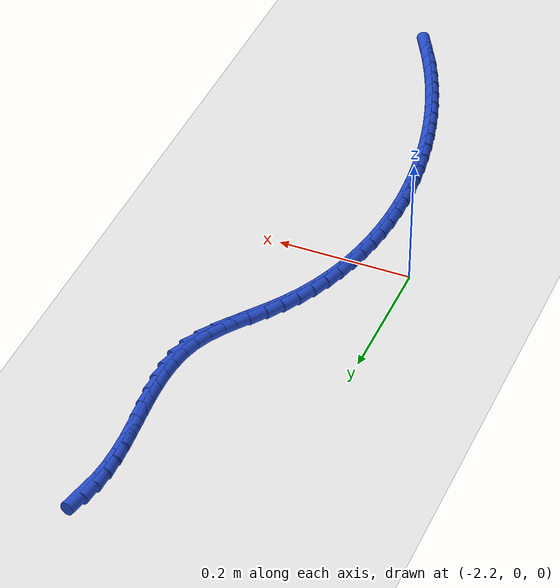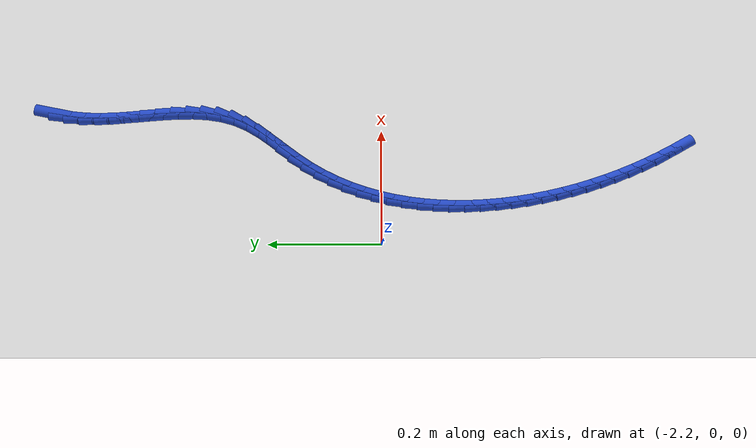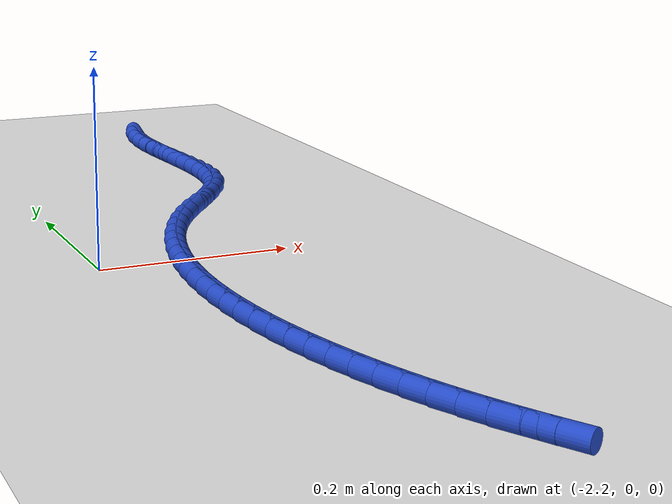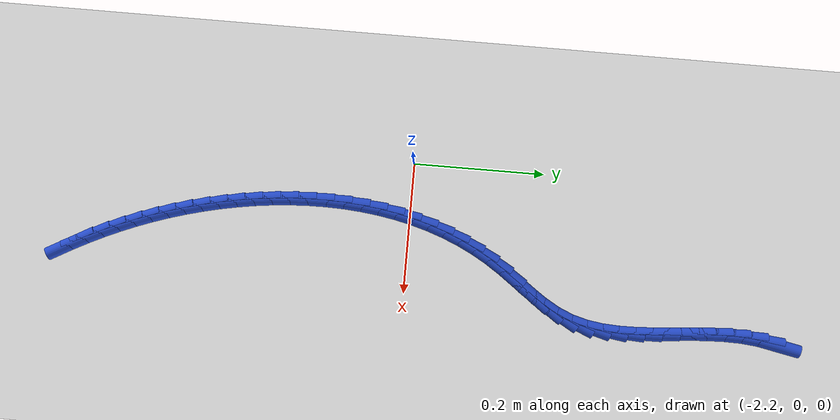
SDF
<sdf version="1.6">
 <world name="default">
  <model name="ground_plane">
   <static>1</static>
   <link name="link">
    <collision name="collision">
     <geometry><plane><normal>0 0 1</normal><size>100 100</size></plane></geometry>
     <surface><friction><ode><mu>100</mu><mu2>50</mu2></ode></friction></surface>
    </collision>
    <visual name="visual">
     <cast_shadows>0</cast_shadows>
     <geometry><plane><normal>0 0 1</normal><size>100 100</size></plane></geometry>
     <material>
      <script><uri>file://media/materials/scripts/gazebo.material</uri><name>Gazebo/WhiteGlow</name></script>
     </material>
    </visual>
   </link>
  </model>
  <model name="line">
   <link name="link_107">
    <pose>-1.9692892650598437 0.5724869319121252 0.01 0 1.57 1.3735192583928297</pose>
    <collision name="collision">
     <geometry><cylinder><radius>0.01</radius><length>0.08</length></cylinder></geometry>
    </collision>
    <visual name="visual">
     <material>
      <script><name>Gazebo/Blue</name><uri>file://media/materials/scripts/gazebo.material</uri></script>
     </material>
     <geometry><cylinder><radius>0.01</radius><length>0.08</length></cylinder></geometry>
    </visual>
   </link>
   <link name="link_108">
    <pose>-1.974353403404126 0.5471506294577564 0.01 0 1.57 1.473819494423518</pose>
    <collision name="collision">
     <geometry><cylinder><radius>0.01</radius><length>0.08</length></cylinder></geometry>
    </collision>
    <visual name="visual">
     <material>
      <script><name>Gazebo/Blue</name><uri>file://media/materials/scripts/gazebo.material</uri></script>
     </material>
     <geometry><cylinder><radius>0.01</radius><length>0.08</length></cylinder></geometry>
    </visual>
   </link>
   <link name="link_109">
    <pose>-1.9768862348520015 0.5211146537095628 0.01 0 1.57 1.5508737946856261</pose>
    <collision name="collision">
     <geometry><cylinder><radius>0.01</radius><length>0.08</length></cylinder></geometry>
    </collision>
    <visual name="visual">
     <material>
      <script><name>Gazebo/Blue</name><uri>file://media/materials/scripts/gazebo.material</uri></script>
     </material>
     <geometry><cylinder><radius>0.01</radius><length>0.08</length></cylinder></geometry>
    </visual>
   </link>
   <link name="link_110">
    <pose>-1.9774157294589445 0.49454049392088373 0.01 0 1.57 -1.5359880272005844</pose>
    <collision name="collision">
     <geometry><cylinder><radius>0.01</radius><length>0.08</length></cylinder></geometry>
    </collision>
    <visual name="visual">
     <material>
      <script><name>Gazebo/Blue</name><uri>file://media/materials/scripts/gazebo.material</uri></script>
     </material>
     <geometry><cylinder><radius>0.01</radius><length>0.08</length></cylinder></geometry>
    </visual>
   </link>
   <link name="link_111">
    <pose>-1.9764772975115974 0.46759137774064163 0.01 0 1.57 -1.5020209482997133</pose>
    <collision name="collision">
     <geometry><cylinder><radius>0.01</radius><length>0.08</length></cylinder></geometry>
    </collision>
    <visual name="visual">
     <material>
      <script><name>Gazebo/Blue</name><uri>file://media/materials/scripts/gazebo.material</uri></script>
     </material>
     <geometry><cylinder><radius>0.01</radius><length>0.08</length></cylinder></geometry>
    </visual>
   </link>
   <link name="link_112">
    <pose>-1.9746063492966035 0.44043053281775857 0.01 0 1.57 -1.4876328784370791</pose>
    <collision name="collision">
     <geometry><cylinder><radius>0.01</radius><length>0.08</length></cylinder></geometry>
    </collision>
    <visual name="visual">
     <material>
      <script><name>Gazebo/Blue</name><uri>file://media/materials/scripts/gazebo.material</uri></script>
     </material>
     <geometry><cylinder><radius>0.01</radius><length>0.08</length></cylinder></geometry>
    </visual>
   </link>
   <link name="link_113">
    <pose>-1.9723382951006043 0.4132211868011565 0.01 0 1.57 -1.492353454343386</pose>
    <collision name="collision">
     <geometry><cylinder><radius>0.01</radius><length>0.08</length></cylinder></geometry>
    </collision>
    <visual name="visual">
     <material>
      <script><name>Gazebo/Blue</name><uri>file://media/materials/scripts/gazebo.material</uri></script>
     </material>
     <geometry><cylinder><radius>0.01</radius><length>0.08</length></cylinder></geometry>
    </visual>
   </link>
   <link name="link_114">
    <pose>-1.970208545210243 0.3861265673397574 0.01 0 1.57 -1.5165536761904743</pose>
    <collision name="collision">
     <geometry><cylinder><radius>0.01</radius><length>0.08</length></cylinder></geometry>
    </collision>
    <visual name="visual">
     <material>
      <script><name>Gazebo/Blue</name><uri>file://media/materials/scripts/gazebo.material</uri></script>
     </material>
     <geometry><cylinder><radius>0.01</radius><length>0.08</length></cylinder></geometry>
    </visual>
   </link>
   <link name="link_115">
    <pose>-1.968752509912163 0.3593099020824832 0.01 0 1.57 -1.5614352393379924</pose>
    <collision name="collision">
     <geometry><cylinder><radius>0.01</radius><length>0.08</length></cylinder></geometry>
    </collision>
    <visual name="visual">
     <material>
      <script><name>Gazebo/Blue</name><uri>file://media/materials/scripts/gazebo.material</uri></script>
     </material>
     <geometry><cylinder><radius>0.01</radius><length>0.08</length></cylinder></geometry>
    </visual>
   </link>
   <link name="link_116">
    <pose>-1.9685055994930059 0.3329344186782567 0.01 0 1.57 1.5127489867783444</pose>
    <collision name="collision">
     <geometry><cylinder><radius>0.01</radius><length>0.08</length></cylinder></geometry>
    </collision>
    <visual name="visual">
     <material>
      <script><name>Gazebo/Blue</name><uri>file://media/materials/scripts/gazebo.material</uri></script>
     </material>
     <geometry><cylinder><radius>0.01</radius><length>0.08</length></cylinder></geometry>
    </visual>
   </link>
   <link name="link_117">
    <pose>-1.9700032242394143 0.30716334477599955 0.01 0 1.57 1.420848318984438</pose>
    <collision name="collision">
     <geometry><cylinder><radius>0.01</radius><length>0.08</length></cylinder></geometry>
    </collision>
    <visual name="visual">
     <material>
      <script><name>Gazebo/Blue</name><uri>file://media/materials/scripts/gazebo.material</uri></script>
     </material>
     <geometry><cylinder><radius>0.01</radius><length>0.08</length></cylinder></geometry>
    </visual>
   </link>
   <link name="link_118">
    <pose>-1.9737807944380314 0.28215990802463353 0.01 0 1.57 1.3034743764671453</pose>
    <collision name="collision">
     <geometry><cylinder><radius>0.01</radius><length>0.08</length></cylinder></geometry>
    </collision>
    <visual name="visual">
     <material>
      <script><name>Gazebo/Blue</name><uri>file://media/materials/scripts/gazebo.material</uri></script>
     </material>
     <geometry><cylinder><radius>0.01</radius><length>0.08</length></cylinder></geometry>
    </visual>
   </link>
   <link name="link_119">
    <pose>-1.9803737203754996 0.25808733607308154 0.01 0 1.57 1.1642402775282215</pose>
    <collision name="collision">
     <geometry><cylinder><radius>0.01</radius><length>0.08</length></cylinder></geometry>
    </collision>
    <visual name="visual">
     <material>
      <script><name>Gazebo/Blue</name><uri>file://media/materials/scripts/gazebo.material</uri></script>
     </material>
     <geometry><cylinder><radius>0.01</radius><length>0.08</length></cylinder></geometry>
    </visual>
   </link>
   <link name="link_120">
    <pose>-1.990273695096011 0.23509316413234438 0.01 0 1.57 1.0414393901686285</pose>
    <collision name="collision">
     <geometry><cylinder><radius>0.01</radius><length>0.08</length></cylinder></geometry>
    </collision>
    <visual name="visual">
     <material>
      <script><name>Gazebo/Blue</name><uri>file://media/materials/scripts/gazebo.material</uri></script>
     </material>
     <geometry><cylinder><radius>0.01</radius><length>0.08</length></cylinder></geometry>
    </visual>
   </link>
   <link name="link_121">
    <pose>-2.0031764382200032 0.21303921031786488 0.01 0 1.57 0.9645828095021297</pose>
    <collision name="collision">
     <geometry><cylinder><radius>0.01</radius><length>0.08</length></cylinder></geometry>
    </collision>
    <visual name="visual">
     <material>
      <script><name>Gazebo/Blue</name><uri>file://media/materials/scripts/gazebo.material</uri></script>
     </material>
     <geometry><cylinder><radius>0.01</radius><length>0.08</length></cylinder></geometry>
    </visual>
   </link>
   <link name="link_122">
    <pose>-2.0180831741930203 0.19153800157740394 0.01 0 1.57 0.9308903071487193</pose>
    <collision name="collision">
     <geometry><cylinder><radius>0.01</radius><length>0.08</length></cylinder></geometry>
    </collision>
    <visual name="visual">
     <material>
      <script><name>Gazebo/Blue</name><uri>file://media/materials/scripts/gazebo.material</uri></script>
     </material>
     <geometry><cylinder><radius>0.01</radius><length>0.08</length></cylinder></geometry>
    </visual>
   </link>
   <link name="link_123">
    <pose>-2.0339718242769895 0.170193700109673 0.01 0 1.57 0.9374216310598839</pose>
    <collision name="collision">
     <geometry><cylinder><radius>0.01</radius><length>0.08</length></cylinder></geometry>
    </collision>
    <visual name="visual">
     <material>
      <script><name>Gazebo/Blue</name><uri>file://media/materials/scripts/gazebo.material</uri></script>
     </material>
     <geometry><cylinder><radius>0.01</radius><length>0.08</length></cylinder></geometry>
    </visual>
   </link>
   <link name="link_124">
    <pose>-2.049820309733838 0.14861046811338466 0.01 0 1.57 0.9829868713969717</pose>
    <collision name="collision">
     <geometry><cylinder><radius>0.01</radius><length>0.08</length></cylinder></geometry>
    </collision>
    <visual name="visual">
     <material>
      <script><name>Gazebo/Blue</name><uri>file://media/materials/scripts/gazebo.material</uri></script>
     </material>
     <geometry><cylinder><radius>0.01</radius><length>0.08</length></cylinder></geometry>
    </visual>
   </link>
   <link name="link_125">
    <pose>-2.0646216901283077 0.1263991035363758 0.01 0 1.57 1.0495695333602644</pose>
    <collision name="collision">
     <geometry><cylinder><radius>0.01</radius><length>0.08</length></cylinder></geometry>
    </collision>
    <visual name="visual">
     <material>
      <script><name>Gazebo/Blue</name><uri>file://media/materials/scripts/gazebo.material</uri></script>
     </material>
     <geometry><cylinder><radius>0.01</radius><length>0.08</length></cylinder></geometry>
    </visual>
   </link>
   <link name="link_126">
    <pose>-2.0778407041377407 0.10337716094230943 0.01 0 1.57 1.1149995174617824</pose>
    <collision name="collision">
     <geometry><cylinder><radius>0.01</radius><length>0.08</length></cylinder></geometry>
    </collision>
    <visual name="visual">
     <material>
      <script><name>Gazebo/Blue</name><uri>file://media/materials/scripts/gazebo.material</uri></script>
     </material>
     <geometry><cylinder><radius>0.01</radius><length>0.08</length></cylinder></geometry>
    </visual>
   </link>
   <link name="link_127">
    <pose>-2.0894946876336222 0.07960442127868463 0.01 0 1.57 1.1777402097206275</pose>
    <collision name="collision">
     <geometry><cylinder><radius>0.01</radius><length>0.08</length></cylinder></geometry>
    </collision>
    <visual name="visual">
     <material>
      <script><name>Gazebo/Blue</name><uri>file://media/materials/scripts/gazebo.material</uri></script>
     </material>
     <geometry><cylinder><radius>0.01</radius><length>0.08</length></cylinder></geometry>
    </visual>
   </link>
   <link name="link_128">
    <pose>-2.0996324256906043 0.05515445098962869 0.01 0 1.57 1.2376280993991808</pose>
    <collision name="collision">
     <geometry><cylinder><radius>0.01</radius><length>0.08</length></cylinder></geometry>
    </collision>
    <visual name="visual">
     <material>
      <script><name>Gazebo/Blue</name><uri>file://media/materials/scripts/gazebo.material</uri></script>
     </material>
     <geometry><cylinder><radius>0.01</radius><length>0.08</length></cylinder></geometry>
    </visual>
   </link>
   <link name="link_129">
    <pose>-2.1083027033833375 0.03010081651926928 0.01 0 1.57 1.2945951666907884</pose>
    <collision name="collision">
     <geometry><cylinder><radius>0.01</radius><length>0.08</length></cylinder></geometry>
    </collision>
    <visual name="visual">
     <material>
      <script><name>Gazebo/Blue</name><uri>file://media/materials/scripts/gazebo.material</uri></script>
     </material>
     <geometry><cylinder><radius>0.01</radius><length>0.08</length></cylinder></geometry>
    </visual>
   </link>
   <link name="link_130">
    <pose>-2.1155543057864725 0.004517084311734022 0.01 0 1.57 1.3486540381465553</pose>
    <collision name="collision">
     <geometry><cylinder><radius>0.01</radius><length>0.08</length></cylinder></geometry>
    </collision>
    <visual name="visual">
     <material>
      <script><name>Gazebo/Blue</name><uri>file://media/materials/scripts/gazebo.material</uri></script>
     </material>
     <geometry><cylinder><radius>0.01</radius><length>0.08</length></cylinder></geometry>
    </visual>
   </link>
   <link name="link_131">
    <pose>-2.12143601797466 -0.02152317918884943 0.01 0 1.57 1.3998818391510859</pose>
    <collision name="collision">
     <geometry><cylinder><radius>0.01</radius><length>0.08</length></cylinder></geometry>
    </collision>
    <visual name="visual">
     <material>
      <script><name>Gazebo/Blue</name><uri>file://media/materials/scripts/gazebo.material</uri></script>
     </material>
     <geometry><cylinder><radius>0.01</radius><length>0.08</length></cylinder></geometry>
    </visual>
   </link>
   <link name="link_132">
    <pose>-2.1259966250225513 -0.04794640753835341 0.01 0 1.57 1.448404637432862</pose>
    <collision name="collision">
     <geometry><cylinder><radius>0.01</radius><length>0.08</length></cylinder></geometry>
    </collision>
    <visual name="visual">
     <material>
      <script><name>Gazebo/Blue</name><uri>file://media/materials/scripts/gazebo.material</uri></script>
     </material>
     <geometry><cylinder><radius>0.01</radius><length>0.08</length></cylinder></geometry>
    </visual>
   </link>
   <link name="link_133">
    <pose>-2.1292849120047985 -0.07467903429265108 0.01 0 1.57 1.4943836617533655</pose>
    <collision name="collision">
     <geometry><cylinder><radius>0.01</radius><length>0.08</length></cylinder></geometry>
    </collision>
    <visual name="visual">
     <material>
      <script><name>Gazebo/Blue</name><uri>file://media/materials/scripts/gazebo.material</uri></script>
     </material>
     <geometry><cylinder><radius>0.01</radius><length>0.08</length></cylinder></geometry>
    </visual>
   </link>
   <link name="link_134">
    <pose>-2.13134966399605 -0.10164749300761317 0.01 0 1.57 1.5380038725770064</pose>
    <collision name="collision">
     <geometry><cylinder><radius>0.01</radius><length>0.08</length></cylinder></geometry>
    </collision>
    <visual name="visual">
     <material>
      <script><name>Gazebo/Blue</name><uri>file://media/materials/scripts/gazebo.material</uri></script>
     </material>
     <geometry><cylinder><radius>0.01</radius><length>0.08</length></cylinder></geometry>
    </visual>
   </link>
   <link name="link_135">
    <pose>-2.1322396660709586 -0.12877821723911287 0.01 0 1.57 -1.562127632622119</pose>
    <collision name="collision">
     <geometry><cylinder><radius>0.01</radius><length>0.08</length></cylinder></geometry>
    </collision>
    <visual name="visual">
     <material>
      <script><name>Gazebo/Blue</name><uri>file://media/materials/scripts/gazebo.material</uri></script>
     </material>
     <geometry><cylinder><radius>0.01</radius><length>0.08</length></cylinder></geometry>
    </visual>
   </link>
   <link name="link_136">
    <pose>-2.132003703304175 -0.1559976405430225 0.01 0 1.57 -1.5226175952604049</pose>
    <collision name="collision">
     <geometry><cylinder><radius>0.01</radius><length>0.08</length></cylinder></geometry>
    </collision>
    <visual name="visual">
     <material>
      <script><name>Gazebo/Blue</name><uri>file://media/materials/scripts/gazebo.material</uri></script>
     </material>
     <geometry><cylinder><radius>0.01</radius><length>0.08</length></cylinder></geometry>
    </visual>
   </link>
   <link name="link_137">
    <pose>-2.1306905607703492 -0.1832321964752144 0.01 0 1.57 -1.484847032411939</pose>
    <collision name="collision">
     <geometry><cylinder><radius>0.01</radius><length>0.08</length></cylinder></geometry>
    </collision>
    <visual name="visual">
     <material>
      <script><name>Gazebo/Blue</name><uri>file://media/materials/scripts/gazebo.material</uri></script>
     </material>
     <geometry><cylinder><radius>0.01</radius><length>0.08</length></cylinder></geometry>
    </visual>
   </link>
   <link name="link_138">
    <pose>-2.1283490235441334 -0.21040831859156095 0.01 0 1.57 -1.4486033819289177</pose>
    <collision name="collision">
     <geometry><cylinder><radius>0.01</radius><length>0.08</length></cylinder></geometry>
    </collision>
    <visual name="visual">
     <material>
      <script><name>Gazebo/Blue</name><uri>file://media/materials/scripts/gazebo.material</uri></script>
     </material>
     <geometry><cylinder><radius>0.01</radius><length>0.08</length></cylinder></geometry>
    </visual>
   </link>
   <link name="link_139">
    <pose>-2.1250278767001776 -0.23745244044793445 0.01 0 1.57 -1.4136744634495668</pose>
    <collision name="collision">
     <geometry><cylinder><radius>0.01</radius><length>0.08</length></cylinder></geometry>
    </collision>
    <visual name="visual">
     <material>
      <script><name>Gazebo/Blue</name><uri>file://media/materials/scripts/gazebo.material</uri></script>
     </material>
     <geometry><cylinder><radius>0.01</radius><length>0.08</length></cylinder></geometry>
    </visual>
   </link>
   <link name="link_140">
    <pose>-2.120775905313133 -0.2642909956002081 0.01 0 1.57 -1.3798485895681412</pose>
    <collision name="collision">
     <geometry><cylinder><radius>0.01</radius><length>0.08</length></cylinder></geometry>
    </collision>
    <visual name="visual">
     <material>
      <script><name>Gazebo/Blue</name><uri>file://media/materials/scripts/gazebo.material</uri></script>
     </material>
     <geometry><cylinder><radius>0.01</radius><length>0.08</length></cylinder></geometry>
    </visual>
   </link>
   <link name="link_141">
    <pose>-2.1156418944576503 -0.2908504176042526 0.01 0 1.57 -1.3469136738407417</pose>
    <collision name="collision">
     <geometry><cylinder><radius>0.01</radius><length>0.08</length></cylinder></geometry>
    </collision>
    <visual name="visual">
     <material>
      <script><name>Gazebo/Blue</name><uri>file://media/materials/scripts/gazebo.material</uri></script>
     </material>
     <geometry><cylinder><radius>0.01</radius><length>0.08</length></cylinder></geometry>
    </visual>
   </link>
   <link name="link_142">
    <pose>-2.1096746292083814 -0.31705714001594115 0.01 0 1.57 -1.3146046534071527</pose>
    <collision name="collision">
     <geometry><cylinder><radius>0.01</radius><length>0.08</length></cylinder></geometry>
    </collision>
    <visual name="visual">
     <material>
      <script><name>Gazebo/Blue</name><uri>file://media/materials/scripts/gazebo.material</uri></script>
     </material>
     <geometry><cylinder><radius>0.01</radius><length>0.08</length></cylinder></geometry>
    </visual>
   </link>
   <link name="link_143">
    <pose>-2.1029193424077457 -0.34284581380880735 0.01 0 1.57 -1.2824415216156866</pose>
    <collision name="collision">
     <geometry><cylinder><radius>0.01</radius><length>0.08</length></cylinder></geometry>
    </collision>
    <visual name="visual">
     <material>
      <script><name>Gazebo/Blue</name><uri>file://media/materials/scripts/gazebo.material</uri></script>
     </material>
     <geometry><cylinder><radius>0.01</radius><length>0.08</length></cylinder></geometry>
    </visual>
   </link>
   <link name="link_144">
    <pose>-2.095395694335413 -0.3682102472454143 0.01 0 1.57 -1.2503596058764912</pose>
    <collision name="collision">
     <geometry><cylinder><radius>0.01</radius><length>0.08</length></cylinder></geometry>
    </collision>
    <visual name="visual">
     <material>
      <script><name>Gazebo/Blue</name><uri>file://media/materials/scripts/gazebo.material</uri></script>
     </material>
     <geometry><cylinder><radius>0.01</radius><length>0.08</length></cylinder></geometry>
    </visual>
   </link>
   <link name="link_145">
    <pose>-2.0871121446003515 -0.39317015922233506 0.01 0 1.57 -1.2184864481988062</pose>
    <collision name="collision">
     <geometry><cylinder><radius>0.01</radius><length>0.08</length></cylinder></geometry>
    </collision>
    <visual name="visual">
     <material>
      <script><name>Gazebo/Blue</name><uri>file://media/materials/scripts/gazebo.material</uri></script>
     </material>
     <geometry><cylinder><radius>0.01</radius><length>0.08</length></cylinder></geometry>
    </visual>
   </link>
   <link name="link_146">
    <pose>-2.0780771053369644 -0.41774537845957105 0.01 0 1.57 -1.1869482403132712</pose>
    <collision name="collision">
     <geometry><cylinder><radius>0.01</radius><length>0.08</length></cylinder></geometry>
    </collision>
    <visual name="visual">
     <material>
      <script><name>Gazebo/Blue</name><uri>file://media/materials/scripts/gazebo.material</uri></script>
     </material>
     <geometry><cylinder><radius>0.01</radius><length>0.08</length></cylinder></geometry>
    </visual>
   </link>
   <link name="link_147">
    <pose>-2.068298988679655 -0.4419557336771241 0.01 0 1.57 -1.1558668213465861</pose>
    <collision name="collision">
     <geometry><cylinder><radius>0.01</radius><length>0.08</length></cylinder></geometry>
    </collision>
    <visual name="visual">
     <material>
      <script><name>Gazebo/Blue</name><uri>file://media/materials/scripts/gazebo.material</uri></script>
     </material>
     <geometry><cylinder><radius>0.01</radius><length>0.08</length></cylinder></geometry>
    </visual>
   </link>
   <link name="link_148">
    <pose>-2.0577862067628256 -0.4658210535949956 0.01 0 1.57 -1.1253575538251421</pose>
    <collision name="collision">
     <geometry><cylinder><radius>0.01</radius><length>0.08</length></cylinder></geometry>
    </collision>
    <visual name="visual">
     <material>
      <script><name>Gazebo/Blue</name><uri>file://media/materials/scripts/gazebo.material</uri></script>
     </material>
     <geometry><cylinder><radius>0.01</radius><length>0.08</length></cylinder></geometry>
    </visual>
   </link>
   <link name="link_149">
    <pose>-2.04654717172088 -0.4893611669331881 0.01 0 1.57 -1.095527487753668</pose>
    <collision name="collision">
     <geometry><cylinder><radius>0.01</radius><length>0.08</length></cylinder></geometry>
    </collision>
    <visual name="visual">
     <material>
      <script><name>Gazebo/Blue</name><uri>file://media/materials/scripts/gazebo.material</uri></script>
     </material>
     <geometry><cylinder><radius>0.01</radius><length>0.08</length></cylinder></geometry>
    </visual>
   </link>
   <link name="link_150">
    <pose>-2.0345902956882216 -0.5125959024117016 0.01 0 1.57 -1.0664738779306244</pose>
    <collision name="collision">
     <geometry><cylinder><radius>0.01</radius><length>0.08</length></cylinder></geometry>
    </collision>
    <visual name="visual">
     <material>
      <script><name>Gazebo/Blue</name><uri>file://media/materials/scripts/gazebo.material</uri></script>
     </material>
     <geometry><cylinder><radius>0.01</radius><length>0.08</length></cylinder></geometry>
    </visual>
   </link>
  </model>
 </world>
</sdf>
